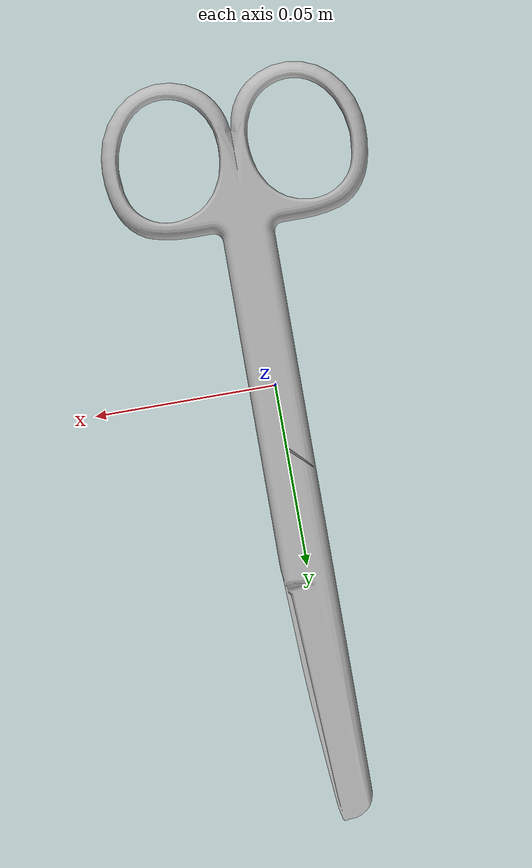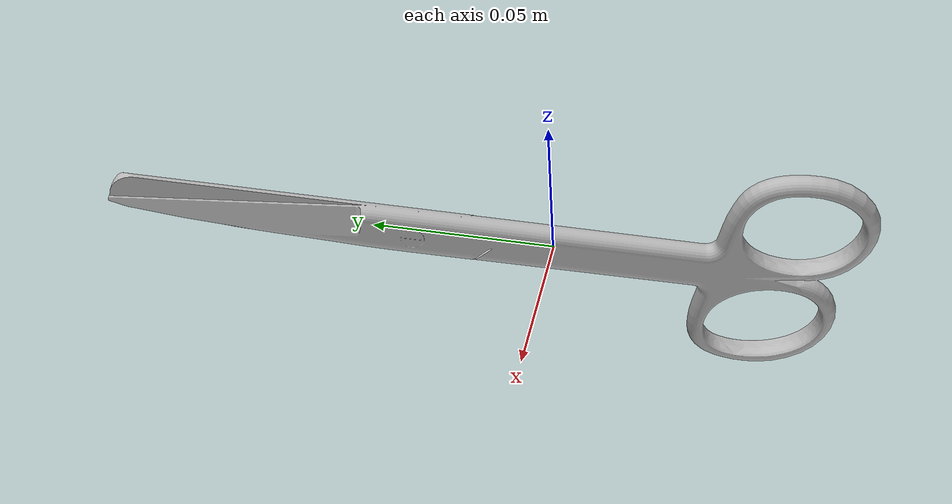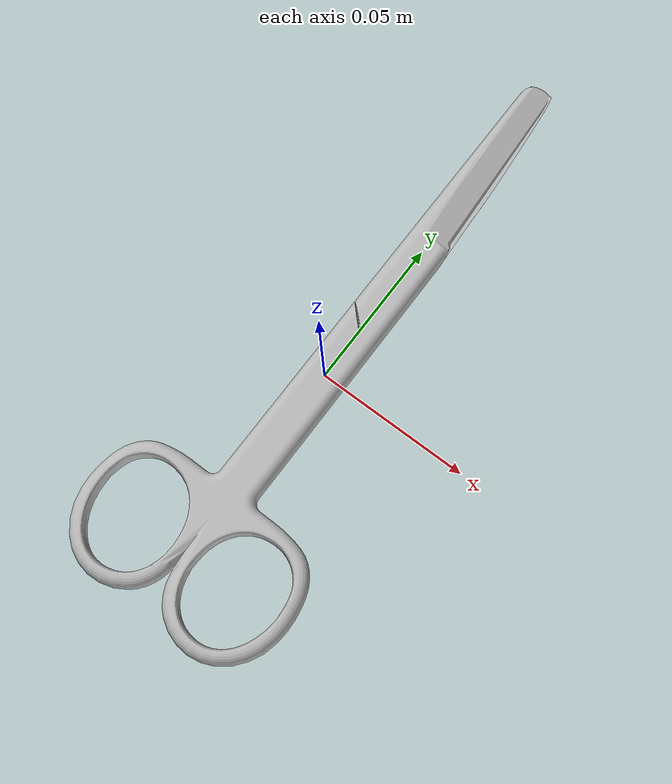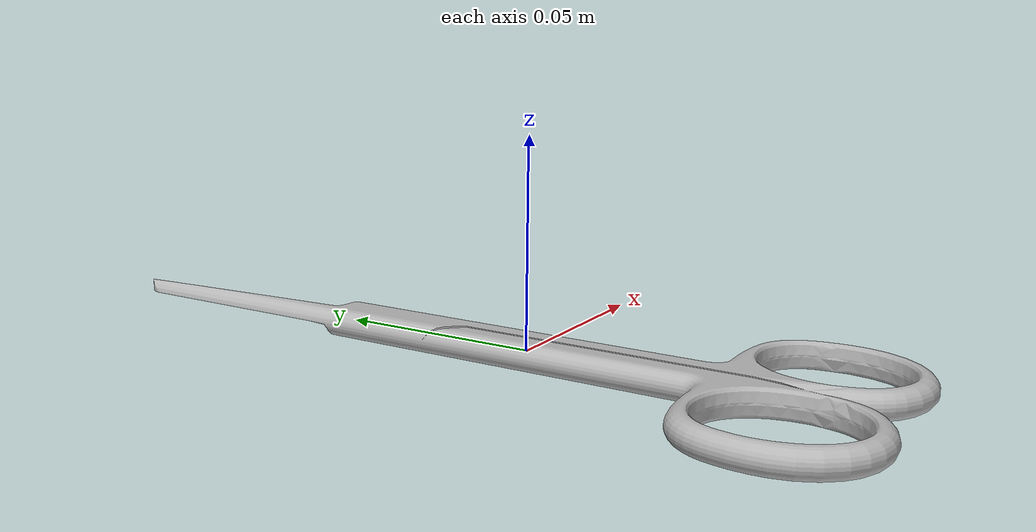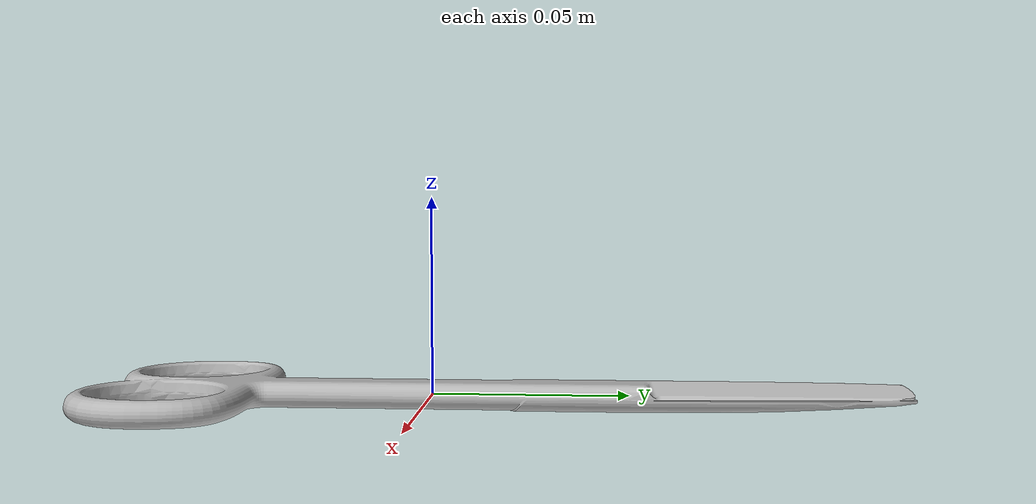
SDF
<?xml version="1.0"?>
<sdf version="1.6">
  <model name="medical_scissors">
    <static>false</static>

    <link name="link">
      <gravity>1</gravity>
      <self_collide>false</self_collide>

      <inertial>
        <mass>0.08</mass>
        <inertia>
            <ixx>3e-5</ixx>
            <iyy>3e-4</iyy>
            <izz>3e-4</izz>

            <ixy>0</ixy>
            <ixz>0</ixz>
            <iyz>0</iyz>
        </inertia>
      </inertial>

      <!-- VISUAL-->
      <visual name="visual">
        <geometry>
          <mesh>
            <uri>model://medical_scissors/meshes/scissors_fusion360.stl</uri>
            <scale>1 1 1</scale>
          </mesh>
        </geometry>
        <cast_shadows>false</cast_shadows>
      </visual>

      <!-- COLLISION PRIMITIVE -->
      <collision name="collision">
        <pose>0 0 0 0 0 1.5708</pose>
        <geometry>
            <box>
            <size>0.200 0.070 0.035</size>
            </box>
        </geometry>

        <surface>
            <contact>
            <ode/>
            </contact>

            <friction>
            <ode/>
            </friction>
        </surface>
      </collision>

    </link>
  </model>
</sdf>
